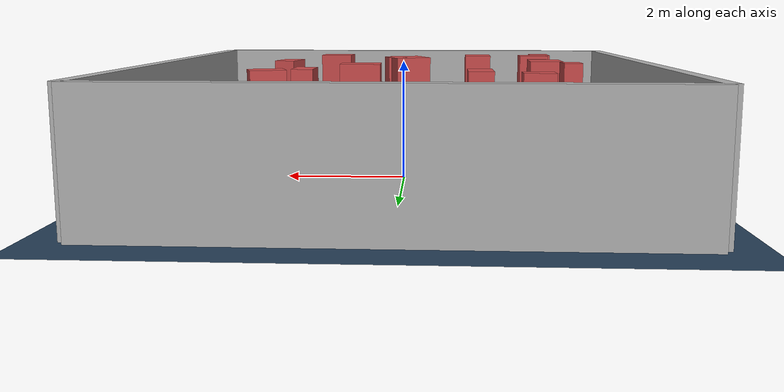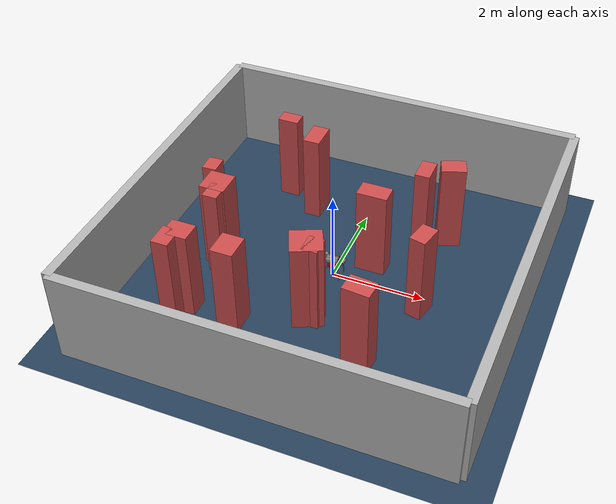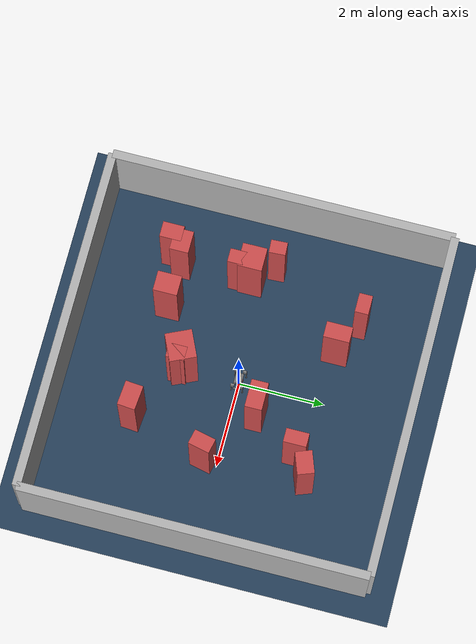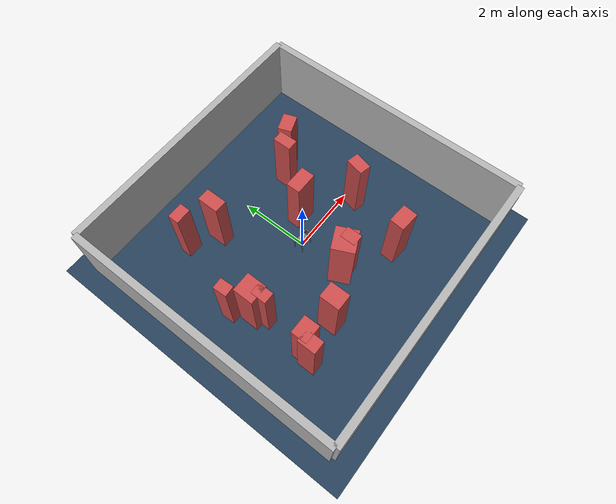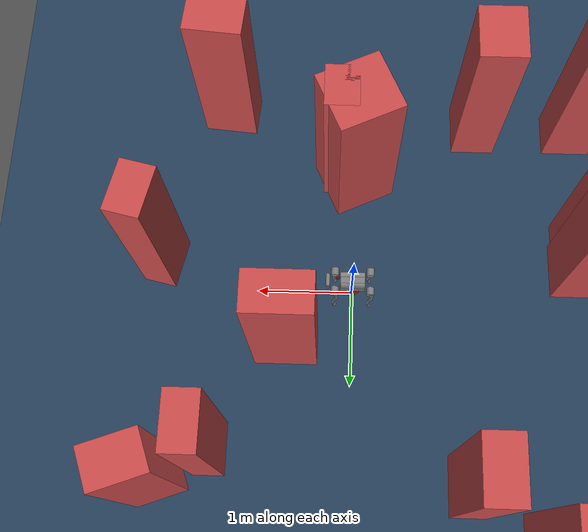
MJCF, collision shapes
<?xml version='1.0' encoding='utf-8'?>
<mujoco model="a1 scene">
  <include file="a1.xml" />

  <statistic center="0 0 0.1" extent="0.8" />

  <visual>
    <headlight diffuse="0.6 0.6 0.6" ambient="0.3 0.3 0.3" specular="0 0 0" />
    <rgba haze="0.15 0.25 0.35 1" />
    <global azimuth="120" elevation="-20" />
  </visual>

  <asset>
    <texture type="skybox" builtin="gradient" rgb1="0.3 0.5 0.7" rgb2="0 0 0" width="512" height="3072" />
    <texture type="2d" name="groundplane" builtin="checker" mark="edge" rgb1="0.2 0.3 0.4" rgb2="0.1 0.2 0.3" markrgb="0.8 0.8 0.8" width="300" height="300" />
    <material name="groundplane" texture="groundplane" texuniform="true" texrepeat="5 5" reflectance="0.2" />
    <material name="wall" rgba="0.7 0.7 0.7 1" specular="0.3" shininess="0.5" />
    <material name="cube1" rgba="0.8 0.3 0.3 1" specular="0.5" shininess="0.8" />
    <material name="cube2" rgba="0.3 0.8 0.3 1" specular="0.5" shininess="0.8" />
    <material name="cube3" rgba="0.3 0.3 0.8 1" specular="0.5" shininess="0.8" />
    <material name="cube4" rgba="0.8 0.8 0.3 1" specular="0.5" shininess="0.8" />
  </asset>

  <worldbody>
    <light pos="0 0 1.5" dir="0 0 -1" directional="true" />
    <geom name="floor" size="0 0 0.05" type="plane" material="groundplane" />

    <geom name="wall_front" type="box" size="4.0 0.1 1.0" pos="0 4.0 1.0" material="wall" />
    <geom name="wall_back" type="box" size="4.0 0.1 1.0" pos="0 -4.0 1.0" material="wall" />
    <geom name="wall_left" type="box" size="0.1 4.0 1.0" pos="-4.0 0 1.0" material="wall" />
    <geom name="wall_right" type="box" size="0.1 4.0 1.0" pos="4.0 0 1.0" material="wall" />

    <body name="target_body" mocap="true" pos="0 0 0.3">
      <geom name="target_point" type="sphere" size="0.1" rgba="1.0 0.0 0.0 1.0" contype="0" conaffinity="0" />
    </body>

  <geom name="cube1" type="box" size="0.1804539214445575 0.2503803502502878 1.0" pos="-2.540614761597946 -2.213066753072704 1.0" material="cube1" /><geom name="cube2" type="box" size="0.2610641440298536 0.2203548596386946 1.0" pos="-2.389101834164554 -1.948880945377538 1.0" material="cube1" /><geom name="cube3" type="box" size="0.182477849820586 0.3007836013641494 1.0" pos="-1.1873889711985801 1.9828532402874757 1.0" material="cube1" /><geom name="cube4" type="box" size="0.273665259047277 0.2842893604518075 1.0" pos="-2.4078084040130987 -0.3099530412956448 1.0" material="cube1" /><geom name="cube5" type="box" size="0.15972186526238558 0.2648417355771252 1.0" pos="1.398109007156667 1.6788786718434467 1.0" material="cube1" /><geom name="cube6" type="box" size="0.19413329968535614 0.26082560181375963 1.0" pos="1.8980210805603193 1.996223658699269 1.0" material="cube1" quat="0.5730172842958693 0 0 0.8195432825044611" /><geom name="cube7" type="box" size="0.2075245775839412 0.285496141515034 1.0" pos="1.3898062055687337 -2.11854448852414 1.0" material="cube1" quat="-0.6752670510956108 0 0 0.7375733249681945" /><geom name="cube8" type="box" size="0.22578358573862148 0.15671146758540727 1.0" pos="-1.9699502219572425 2.3800855677144046 1.0" material="cube1" /><geom name="cube9" type="box" size="0.32748093727664135 0.3111891642127579 1.0" pos="-0.0017338536144602124 -1.3334703222304507 1.0" material="cube1" quat="-0.21461697191260226 0 0 0.9766982929068041" /><geom name="cube10" type="box" size="0.16503091077343682 0.21174834606159226 1.0" pos="0.16377562260207323 -1.3869945685438183 1.0" material="cube1" /><geom name="cube11" type="box" size="0.15945763554514586 0.22017465570420297 1.0" pos="-2.325262127445499 -0.611478561512766 1.0" material="cube1" /><geom name="cube12" type="box" size="0.19160529991347383 0.1529275281029271 1.0" pos="-2.771483747547287 0.19984672165322204 1.0" material="cube1" quat="-0.7245234533307939 0 0 0.6892501473149069" /><geom name="cube13" type="box" size="0.23352534979336453 0.27970257014520805 1.0" pos="-1.3319597408052544 -1.9967087054762422 1.0" material="cube1" /><geom name="cube14" type="box" size="0.25466424376147706 0.17266534536655986 1.0" pos="2.0052081917385296 -0.31341439999346177 1.0" material="cube1" quat="0.7808136330132293 0 0 0.6247640118482195" /><geom name="cube15" type="box" size="0.32313931533825163 0.19763873563023351 1.0" pos="0.6720617789403676 0.5881420250306895 1.0" material="cube1" /></worldbody>
</mujoco>

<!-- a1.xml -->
<mujoco model="a1">
  <compiler angle="radian" meshdir="assets" texturedir="assets" autolimits="true"/>

  <option cone="elliptic" impratio="100"/>

  <default>
    <default class="a1">
      <geom friction="0.6" margin="0.001"/>
      <joint axis="0 1 0" damping="2" armature="0.01" frictionloss="0.2"/>
      <position kp="20" kv="0.5" forcerange="-33.5 33.5"/>
      <default class="abduction">
        <joint axis="1 0 0" damping="1" range="-0.802851 0.802851"/>
        <position ctrlrange="-0.802851 0.802851"/>
      </default>
      <default class="hip">
        <joint range="-1.0472 4.18879"/>
        <position ctrlrange="-1.0472 4.18879"/>
      </default>
      <default class="knee">
        <joint range="-2.69653 -0.916298"/>
        <position ctrlrange="-2.69653 -0.916298"/>
      </default>
      <default class="visual">
        <geom type="mesh" contype="0" conaffinity="0" group="2" material="dark"/>
      </default>
      <default class="collision">
        <geom group="3" type="capsule"/>
        <default class="hip_left">
          <geom size="0.04 0.04" quat="1 1 0 0" type="cylinder" pos="0 0.055 0"/>
        </default>
        <default class="hip_right">
          <geom size="0.04 0.04" quat="1 1 0 0" type="cylinder" pos="0 -0.055 0"/>
        </default>
        <default class="thigh1">
          <geom size="0.015" fromto="-0.02 0 0 -0.02 0 -0.16"/>
        </default>
        <default class="thigh2">
          <geom size="0.015" fromto="0 0 0 -0.02 0 -0.1"/>
        </default>
        <default class="thigh3">
          <geom size="0.015" fromto="-0.02 0 -0.16 0 0 -0.2"/>
        </default>
        <default class="calf1">
          <geom size="0.01" fromto="0 0 0 0.02 0 -0.13"/>
        </default>
        <default class="calf2">
          <geom size="0.01" fromto="0.02 0 -0.13 0 0 -0.2"/>
        </default>
        <default class="foot">
          <geom type="sphere" size="0.02" pos="0 0 -0.2" priority="1" solimp="0.015 1 0.02" condim="6"
            friction="0.8 0.02 0.01"/>
        </default>
      </default>
    </default>
  </default>

  <asset>
    <material name="dark" specular="0" shininess="0.25" rgba="0.2 0.2 0.2 1"/>
    <texture type="2d" name="trunk_A1" file="trunk_A1.png"/>
    <material name="carbonfibre" texture="trunk_A1" specular="0" shininess="0.25"/>

    <mesh class="a1" file="calf.obj"/>
    <mesh class="a1" file="hip.obj"/>
    <mesh class="a1" file="thigh.obj"/>
    <mesh class="a1" file="thigh_mirror.obj"/>
    <mesh class="a1" file="trunk.obj"/>
  </asset>

  <worldbody>
    <light name="spotlight" mode="targetbodycom" target="trunk" pos="0 -1 2"/>
    <body name="trunk" pos="0 0 0.43" childclass="a1">
      <freejoint/>
      <inertial mass="4.713" pos="0 0.0041 -0.0005"
        fullinertia="0.0158533 0.0377999 0.0456542 -3.66e-05 -6.11e-05 -2.75e-05"/>
      <geom class="visual" mesh="trunk" material="carbonfibre"/>
      <geom class="collision" size="0.125 0.04 0.057" type="box"/>
      <geom class="collision" quat="1 0 1 0" pos="0 -0.04 0" size="0.058 0.125" type="cylinder"/>
      <geom class="collision" quat="1 0 1 0" pos="0 +0.04 0" size="0.058 0.125" type="cylinder"/>
      <geom class="collision" pos="0.25 0 0" size="0.005 0.06 0.05" type="box"/>
      <geom class="collision" pos="0.25 0.06 -0.01" size="0.009 0.035"/>
      <geom class="collision" pos="0.25 -0.06 -0.01" size="0.009 0.035"/>
      <geom class="collision" pos="0.25 0 -0.05" size="0.005 0.06" quat="1 1 0 0"/>
      <geom class="collision" pos="0.255 0 0.0355" size="0.021 0.052" quat="1 1 0 0"/>

      <!-- Lidar body on top of trunk -->
      <body name="lidar_body" pos="0.15 0 0.12" euler="0 1.5708 0">
        <site name="lidar_origin" pos="0 0 0" size="0.02" type="sphere" rgba="1 0 0 0.5" />
        <!-- 40 evenly spaced lidar beams covering full 360 degrees (9 degrees apart) -->
        <site name="lidar_beam_0" pos="0 0 0" euler="0.000000 0 0" size="0.01" />
        <site name="lidar_beam_1" pos="0 0 0" euler="0.157080 0 0" size="0.01" />
        <site name="lidar_beam_2" pos="0 0 0" euler="0.314159 0 0" size="0.01" />
        <site name="lidar_beam_3" pos="0 0 0" euler="0.471239 0 0" size="0.01" />
        <site name="lidar_beam_4" pos="0 0 0" euler="0.628319 0 0" size="0.01" />
        <site name="lidar_beam_5" pos="0 0 0" euler="0.785398 0 0" size="0.01" />
        <site name="lidar_beam_6" pos="0 0 0" euler="0.942478 0 0" size="0.01" />
        <site name="lidar_beam_7" pos="0 0 0" euler="1.099557 0 0" size="0.01" />
        <site name="lidar_beam_8" pos="0 0 0" euler="1.256637 0 0" size="0.01" />
        <site name="lidar_beam_9" pos="0 0 0" euler="1.413717 0 0" size="0.01" />
        <site name="lidar_beam_10" pos="0 0 0" euler="1.570796 0 0" size="0.01" />
        <site name="lidar_beam_11" pos="0 0 0" euler="1.727876 0 0" size="0.01" />
        <site name="lidar_beam_12" pos="0 0 0" euler="1.884956 0 0" size="0.01" />
        <site name="lidar_beam_13" pos="0 0 0" euler="2.042035 0 0" size="0.01" />
        <site name="lidar_beam_14" pos="0 0 0" euler="2.199115 0 0" size="0.01" />
        <site name="lidar_beam_15" pos="0 0 0" euler="2.356194 0 0" size="0.01" />
        <site name="lidar_beam_16" pos="0 0 0" euler="2.513274 0 0" size="0.01" />
        <site name="lidar_beam_17" pos="0 0 0" euler="2.670354 0 0" size="0.01" />
        <site name="lidar_beam_18" pos="0 0 0" euler="2.827433 0 0" size="0.01" />
        <site name="lidar_beam_19" pos="0 0 0" euler="2.984513 0 0" size="0.01" />
        <site name="lidar_beam_20" pos="0 0 0" euler="3.141593 0 0" size="0.01" />
        <site name="lidar_beam_21" pos="0 0 0" euler="3.298672 0 0" size="0.01" />
        <site name="lidar_beam_22" pos="0 0 0" euler="3.455752 0 0" size="0.01" />
        <site name="lidar_beam_23" pos="0 0 0" euler="3.612832 0 0" size="0.01" />
        <site name="lidar_beam_24" pos="0 0 0" euler="3.769911 0 0" size="0.01" />
        <site name="lidar_beam_25" pos="0 0 0" euler="3.926991 0 0" size="0.01" />
        <site name="lidar_beam_26" pos="0 0 0" euler="4.084070 0 0" size="0.01" />
        <site name="lidar_beam_27" pos="0 0 0" euler="4.241150 0 0" size="0.01" />
        <site name="lidar_beam_28" pos="0 0 0" euler="4.398230 0 0" size="0.01" />
        <site name="lidar_beam_29" pos="0 0 0" euler="4.555309 0 0" size="0.01" />
        <site name="lidar_beam_30" pos="0 0 0" euler="4.712389 0 0" size="0.01" />
        <site name="lidar_beam_31" pos="0 0 0" euler="4.869469 0 0" size="0.01" />
        <site name="lidar_beam_32" pos="0 0 0" euler="5.026548 0 0" size="0.01" />
        <site name="lidar_beam_33" pos="0 0 0" euler="5.183628 0 0" size="0.01" />
        <site name="lidar_beam_34" pos="0 0 0" euler="5.340708 0 0" size="0.01" />
        <site name="lidar_beam_35" pos="0 0 0" euler="5.497787 0 0" size="0.01" />
        <site name="lidar_beam_36" pos="0 0 0" euler="5.654867 0 0" size="0.01" />
        <site name="lidar_beam_37" pos="0 0 0" euler="5.811946 0 0" size="0.01" />
        <site name="lidar_beam_38" pos="0 0 0" euler="5.969026 0 0" size="0.01" />
        <site name="lidar_beam_39" pos="0 0 0" euler="6.126106 0 0" size="0.01" />
      </body>

      <body name="FR_hip" pos="0.183 -0.047 0">
        <inertial mass="0.696" pos="-0.003311 -0.000635 3.1e-05" quat="0.507528 0.506268 0.491507 0.494499"
          diaginertia="0.000807752 0.00055293 0.000468983"/>
        <joint class="abduction" name="FR_hip_joint"/>
        <geom class="visual" mesh="hip" quat="0 1 0 0"/>
        <geom class="hip_right"/>
        <body name="FR_thigh" pos="0 -0.08505 0">
          <inertial mass="1.013" pos="-0.003237 0.022327 -0.027326" quat="0.999125 -0.00256393 -0.0409531 -0.00806091"
            diaginertia="0.00555739 0.00513936 0.00133944"/>
          <joint class="hip" name="FR_thigh_joint"/>
          <geom class="visual" mesh="thigh_mirror"/>
          <geom class="thigh1"/>
          <geom class="thigh2"/>
          <geom class="thigh3"/>
          <body name="FR_calf" pos="0 0 -0.2">
            <inertial mass="0.226" pos="0.00472659 0 -0.131975" quat="0.706886 0.017653 0.017653 0.706886"
              diaginertia="0.00340344 0.00339393 3.54834e-05"/>
            <joint class="knee" name="FR_calf_joint"/>
            <geom class="visual" mesh="calf"/>
            <geom class="calf1"/>
            <geom class="calf2"/>
            <geom class="foot"/>
          </body>
        </body>
      </body>
      <body name="FL_hip" pos="0.183 0.047 0">
        <inertial mass="0.696" pos="-0.003311 0.000635 3.1e-05" quat="0.494499 0.491507 0.506268 0.507528"
          diaginertia="0.000807752 0.00055293 0.000468983"/>
        <joint class="abduction" name="FL_hip_joint"/>
        <geom class="visual" mesh="hip"/>
        <geom class="hip_left"/>
        <geom class="collision" size="0.04 0.04" pos="0 0.055 0" quat="1 1 0 0" type="cylinder"/>
        <body name="FL_thigh" pos="0 0.08505 0">
          <inertial mass="1.013" pos="-0.003237 -0.022327 -0.027326" quat="0.999125 0.00256393 -0.0409531 0.00806091"
            diaginertia="0.00555739 0.00513936 0.00133944"/>
          <joint class="hip" name="FL_thigh_joint"/>
          <geom class="visual" mesh="thigh"/>
          <geom class="thigh1"/>
          <geom class="thigh2"/>
          <geom class="thigh3"/>
          <body name="FL_calf" pos="0 0 -0.2">
            <inertial mass="0.226" pos="0.00472659 0 -0.131975" quat="0.706886 0.017653 0.017653 0.706886"
              diaginertia="0.00340344 0.00339393 3.54834e-05"/>
            <joint class="knee" name="FL_calf_joint"/>
            <geom class="visual" mesh="calf"/>
            <geom class="calf1"/>
            <geom class="calf2"/>
            <geom class="foot"/>
          </body>
        </body>
      </body>
      <body name="RR_hip" pos="-0.183 -0.047 0">
        <inertial mass="0.696" pos="0.003311 -0.000635 3.1e-05" quat="0.491507 0.494499 0.507528 0.506268"
          diaginertia="0.000807752 0.00055293 0.000468983"/>
        <joint class="abduction" name="RR_hip_joint"/>
        <geom class="visual" quat="0 0 0 -1" mesh="hip"/>
        <geom class="hip_right"/>
        <body name="RR_thigh" pos="0 -0.08505 0">
          <inertial mass="1.013" pos="-0.003237 0.022327 -0.027326" quat="0.999125 -0.00256393 -0.0409531 -0.00806091"
            diaginertia="0.00555739 0.00513936 0.00133944"/>
          <joint class="hip" name="RR_thigh_joint"/>
          <geom class="visual" mesh="thigh_mirror"/>
          <geom class="thigh1"/>
          <geom class="thigh2"/>
          <geom class="thigh3"/>
          <body name="RR_calf" pos="0 0 -0.2">
            <inertial mass="0.226" pos="0.00472659 0 -0.131975" quat="0.706886 0.017653 0.017653 0.706886"
              diaginertia="0.00340344 0.00339393 3.54834e-05"/>
            <joint class="knee" name="RR_calf_joint"/>
            <geom class="visual" mesh="calf"/>
            <geom class="calf1"/>
            <geom class="calf2"/>
            <geom class="foot"/>
          </body>
        </body>
      </body>
      <body name="RL_hip" pos="-0.183 0.047 0">
        <inertial mass="0.696" pos="0.003311 0.000635 3.1e-05" quat="0.506268 0.507528 0.494499 0.491507"
          diaginertia="0.000807752 0.00055293 0.000468983"/>
        <joint class="abduction" name="RL_hip_joint"/>
        <geom class="visual" quat="0 0 1 0" mesh="hip"/>
        <geom class="hip_left"/>
        <body name="RL_thigh" pos="0 0.08505 0">
          <inertial mass="1.013" pos="-0.003237 -0.022327 -0.027326" quat="0.999125 0.00256393 -0.0409531 0.00806091"
            diaginertia="0.00555739 0.00513936 0.00133944"/>
          <joint class="hip" name="RL_thigh_joint"/>
          <geom class="visual" mesh="thigh"/>
          <geom class="thigh1"/>
          <geom class="thigh2"/>
          <geom class="thigh3"/>
          <body name="RL_calf" pos="0 0 -0.2">
            <inertial mass="0.226" pos="0.00472659 0 -0.131975" quat="0.706886 0.017653 0.017653 0.706886"
              diaginertia="0.00340344 0.00339393 3.54834e-05"/>
            <joint class="knee" name="RL_calf_joint"/>
            <geom class="visual" mesh="calf"/>
            <geom class="calf1"/>
            <geom class="calf2"/>
            <geom class="foot"/>
          </body>
        </body>
      </body>
    </body>
  </worldbody>

  <actuator>
    <position class="abduction" name="FR_hip" joint="FR_hip_joint"/>
    <position class="hip" name="FR_thigh" joint="FR_thigh_joint"/>
    <position class="knee" name="FR_calf" joint="FR_calf_joint"/>
    <position class="abduction" name="FL_hip" joint="FL_hip_joint"/>
    <position class="hip" name="FL_thigh" joint="FL_thigh_joint"/>
    <position class="knee" name="FL_calf" joint="FL_calf_joint"/>
    <position class="abduction" name="RR_hip" joint="RR_hip_joint"/>
    <position class="hip" name="RR_thigh" joint="RR_thigh_joint"/>
    <position class="knee" name="RR_calf" joint="RR_calf_joint"/>
    <position class="abduction" name="RL_hip" joint="RL_hip_joint"/>
    <position class="hip" name="RL_thigh" joint="RL_thigh_joint"/>
    <position class="knee" name="RL_calf" joint="RL_calf_joint"/>
  </actuator>

  <sensor>
    <!-- 40 evenly spaced lidar rangefinders covering full 360 degrees -->
    <rangefinder name="lidar_0" site="lidar_beam_0" cutoff="3.0" />
    <rangefinder name="lidar_1" site="lidar_beam_1" cutoff="3.0" />
    <rangefinder name="lidar_2" site="lidar_beam_2" cutoff="3.0" />
    <rangefinder name="lidar_3" site="lidar_beam_3" cutoff="3.0" />
    <rangefinder name="lidar_4" site="lidar_beam_4" cutoff="3.0" />
    <rangefinder name="lidar_5" site="lidar_beam_5" cutoff="3.0" />
    <rangefinder name="lidar_6" site="lidar_beam_6" cutoff="3.0" />
    <rangefinder name="lidar_7" site="lidar_beam_7" cutoff="3.0" />
    <rangefinder name="lidar_8" site="lidar_beam_8" cutoff="3.0" />
    <rangefinder name="lidar_9" site="lidar_beam_9" cutoff="3.0" />
    <rangefinder name="lidar_10" site="lidar_beam_10" cutoff="3.0" />
    <rangefinder name="lidar_11" site="lidar_beam_11" cutoff="3.0" />
    <rangefinder name="lidar_12" site="lidar_beam_12" cutoff="3.0" />
    <rangefinder name="lidar_13" site="lidar_beam_13" cutoff="3.0" />
    <rangefinder name="lidar_14" site="lidar_beam_14" cutoff="3.0" />
    <rangefinder name="lidar_15" site="lidar_beam_15" cutoff="3.0" />
    <rangefinder name="lidar_16" site="lidar_beam_16" cutoff="3.0" />
    <rangefinder name="lidar_17" site="lidar_beam_17" cutoff="3.0" />
    <rangefinder name="lidar_18" site="lidar_beam_18" cutoff="3.0" />
    <rangefinder name="lidar_19" site="lidar_beam_19" cutoff="3.0" />
    <rangefinder name="lidar_20" site="lidar_beam_20" cutoff="3.0" />
    <rangefinder name="lidar_21" site="lidar_beam_21" cutoff="3.0" />
    <rangefinder name="lidar_22" site="lidar_beam_22" cutoff="3.0" />
    <rangefinder name="lidar_23" site="lidar_beam_23" cutoff="3.0" />
    <rangefinder name="lidar_24" site="lidar_beam_24" cutoff="3.0" />
    <rangefinder name="lidar_25" site="lidar_beam_25" cutoff="3.0" />
    <rangefinder name="lidar_26" site="lidar_beam_26" cutoff="3.0" />
    <rangefinder name="lidar_27" site="lidar_beam_27" cutoff="3.0" />
    <rangefinder name="lidar_28" site="lidar_beam_28" cutoff="3.0" />
    <rangefinder name="lidar_29" site="lidar_beam_29" cutoff="3.0" />
    <rangefinder name="lidar_30" site="lidar_beam_30" cutoff="3.0" />
    <rangefinder name="lidar_31" site="lidar_beam_31" cutoff="3.0" />
    <rangefinder name="lidar_32" site="lidar_beam_32" cutoff="3.0" />
    <rangefinder name="lidar_33" site="lidar_beam_33" cutoff="3.0" />
    <rangefinder name="lidar_34" site="lidar_beam_34" cutoff="3.0" />
    <rangefinder name="lidar_35" site="lidar_beam_35" cutoff="3.0" />
    <rangefinder name="lidar_36" site="lidar_beam_36" cutoff="3.0" />
    <rangefinder name="lidar_37" site="lidar_beam_37" cutoff="3.0" />
    <rangefinder name="lidar_38" site="lidar_beam_38" cutoff="3.0" />
    <rangefinder name="lidar_39" site="lidar_beam_39" cutoff="3.0" />
  </sensor>

  <keyframe>
    <key name="home" qpos="0 0 0.27 1 0 0 0 0 0.9 -1.8 0 0.9 -1.8 0 0.9 -1.8 0 0.9 -1.8"
      ctrl="0 0.9 -1.8 0 0.9 -1.8 0 0.9 -1.8 0 0.9 -1.8"/>
  </keyframe>
</mujoco>
